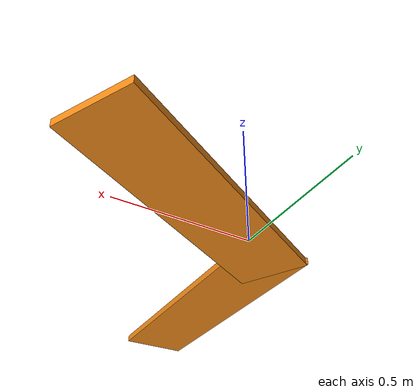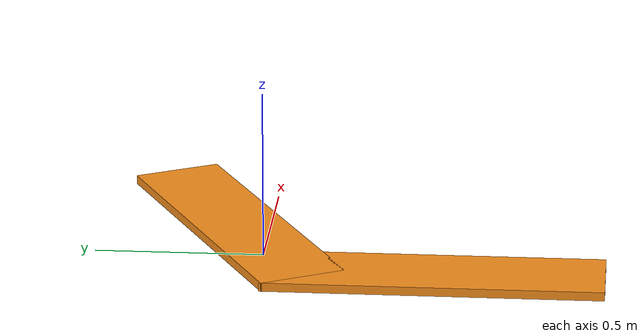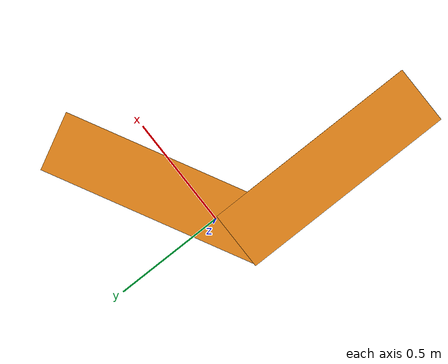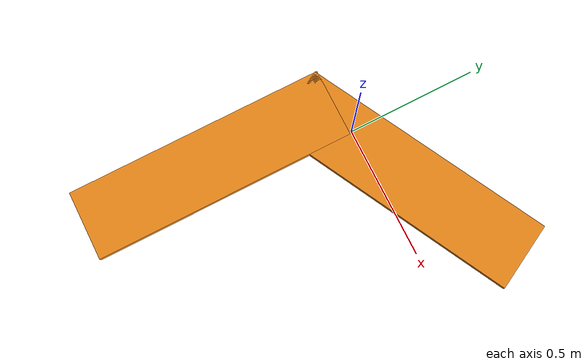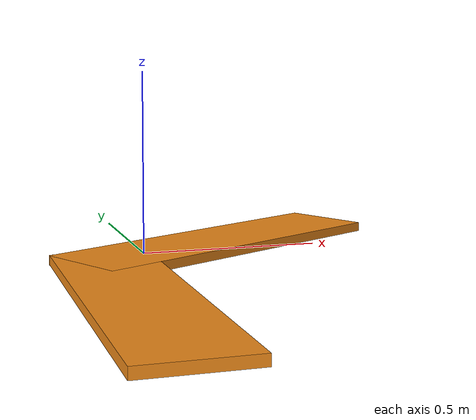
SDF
<?xml version='1.0'?>
<sdf version='1.6'>
  <model name='crooked_path'>

    <pose> 0 0 0 0 0 0 </pose>
    <static>1</static>
    <self_collide>0</self_collide>

    <link name='link_0'>
      <pose>-0.127533 -0.50937 0 0 -0 0</pose>
      <visual name='visual'>
        <pose>0 0 0 0 -0 0</pose>
        <geometry>
          <box>
            <size>0.266559 1.0 0.026174</size>
          </box>
        </geometry>
        <material>
          <script>
            <uri>file://media/materials/scripts/gazebo.material</uri>
            <name>Gazebo/Orange</name>
          </script>
        </material>
      </visual>

      <collision name='collision'>
        <pose>0 0 0 0 -0 0</pose>
        <geometry>
          <box>
            <size>0.266559 0.688207 0.026174</size>
          </box>
        </geometry>
      </collision>
    </link>

    <link name='link_0_clone'>
      <pose> 0.241999 0.1 0.0 0 0 -1.08343</pose>

      <visual name='visual'>
        <pose>0 0 0 0 -0 0</pose>
        <geometry>
          <box>
            <size>0.266559 1.0 0.026174</size>
          </box>
        </geometry>
        <material>
          <script>
            <uri>file://media/materials/scripts/gazebo.material</uri>
            <name>Gazebo/Orange</name>
          </script>
        </material>
      </visual>

      <collision name='collision'>
        <pose>0 0 0 0 0 0</pose>
        <geometry>
          <box>
            <size>0.266559 0.438116 0.026174</size>
          </box>
        </geometry>
      </collision>
    </link>

  </model>

</sdf>
